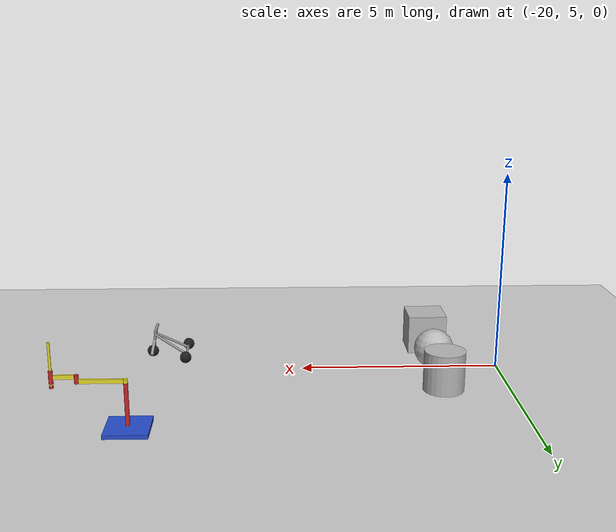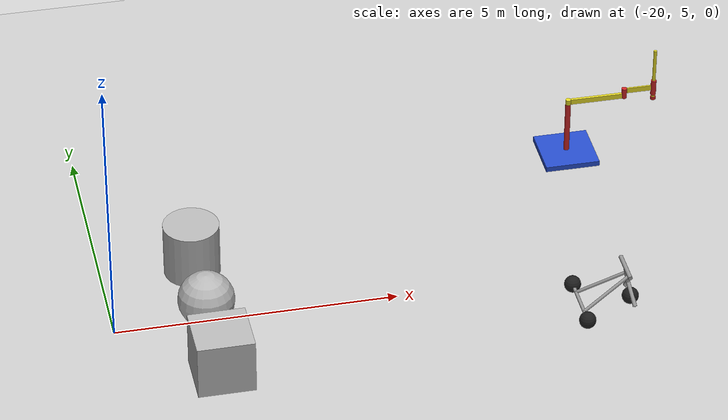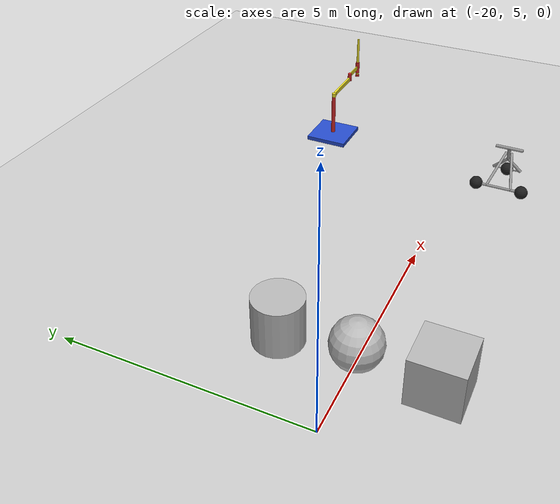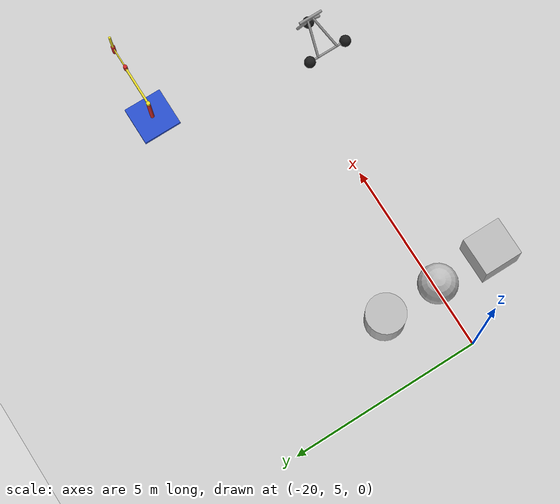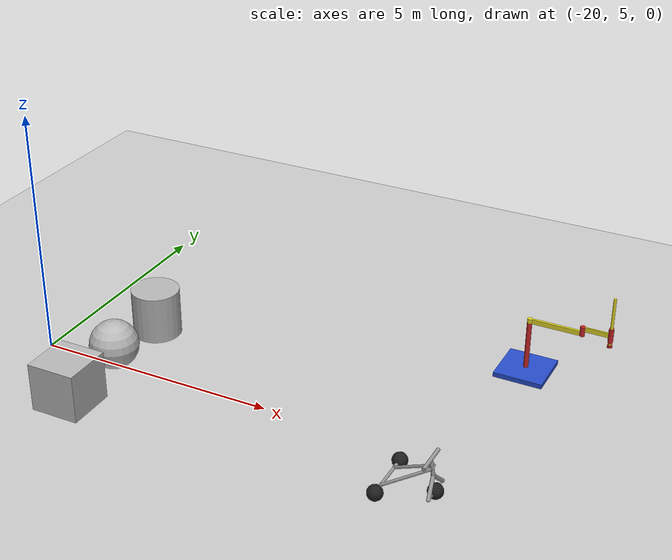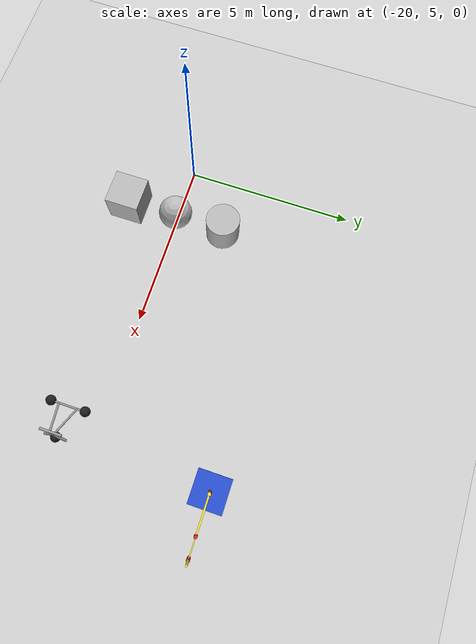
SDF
<sdf version="1.6">
 <world name="default">
  <model name="ground_plane">
   <static>1</static>
   <link name="link">
    <collision name="collision">
     <geometry><plane><normal>0 0 1</normal><size>100 100</size></plane></geometry>
     <surface>
      <contact><collide_bitmask>65535</collide_bitmask></contact>
      <friction><ode><mu>100</mu><mu2>50</mu2></ode></friction>
     </surface>
    </collision>
    <visual name="visual">
     <cast_shadows>0</cast_shadows>
     <geometry><plane><normal>0 0 1</normal><size>100 100</size></plane></geometry>
     <material>
      <script><uri>file://media/materials/scripts/gazebo.material</uri><name>Gazebo/Grey</name></script>
     </material>
    </visual>
   </link>
  </model>
  <model name="simple_arm">
   <link name="arm_base">
    <inertial>
     <pose>0 0 0.00099 0 -0 0</pose>
     <inertia><ixx>1.11</ixx><ixy>0</ixy><ixz>0</ixz><iyy>100.11</iyy><iyz>0</iyz><izz>1.01</izz></inertia>
     <mass>101</mass>
    </inertial>
    <collision name="arm_base_geom">
     <pose>0 0 0.05 0 -0 0</pose>
     <geometry><box><size>1 1 0.1</size></box></geometry>
    </collision>
    <visual name="arm_base_geom_visual">
     <pose>0 0 0.05 0 -0 0</pose>
     <geometry><box><size>1 1 0.1</size></box></geometry>
     <material>
      <script><uri>file://media/materials/scripts/gazebo.material</uri><name>Gazebo/Blue</name></script>
     </material>
    </visual>
    <collision name="arm_base_geom_arm_trunk">
     <pose>0 0 0.6 0 -0 0</pose>
     <geometry><cylinder><radius>0.05</radius><length>1</length></cylinder></geometry>
    </collision>
    <visual name="arm_base_geom_arm_trunk_visual">
     <pose>0 0 0.6 0 -0 0</pose>
     <geometry><cylinder><radius>0.05</radius><length>1</length></cylinder></geometry>
     <material>
      <script><uri>file://media/materials/scripts/gazebo.material</uri><name>Gazebo/Red</name></script>
     </material>
    </visual>
   </link>
   <link name="arm_shoulder_pan">
    <pose>0 0 1.1 0 -0 0</pose>
    <inertial>
     <pose>0.045455 0 0 0 -0 0</pose>
     <inertia><ixx>0.011</ixx><ixy>0</ixy><ixz>0</ixz><iyy>0.0225</iyy><iyz>0</iyz><izz>0.0135</izz></inertia>
     <mass>1.1</mass>
    </inertial>
    <collision name="arm_shoulder_pan_geom">
     <pose>0 0 0.05 0 -0 0</pose>
     <geometry><cylinder><radius>0.05</radius><length>0.1</length></cylinder></geometry>
    </collision>
    <visual name="arm_shoulder_pan_geom_visual">
     <pose>0 0 0.05 0 -0 0</pose>
     <geometry><cylinder><radius>0.05</radius><length>0.1</length></cylinder></geometry>
     <material>
      <script><uri>file://media/materials/scripts/gazebo.material</uri><name>Gazebo/Yellow</name></script>
     </material>
    </visual>
    <collision name="arm_shoulder_pan_geom_arm_shoulder">
     <pose>0.55 0 0.05 0 -0 0</pose>
     <geometry><box><size>1 0.05 0.1</size></box></geometry>
    </collision>
    <visual name="arm_shoulder_pan_geom_arm_shoulder_visual">
     <pose>0.55 0 0.05 0 -0 0</pose>
     <geometry><box><size>1 0.05 0.1</size></box></geometry>
     <material>
      <script><uri>file://media/materials/scripts/gazebo.material</uri><name>Gazebo/Yellow</name></script>
     </material>
    </visual>
   </link>
   <link name="arm_elbow_pan">
    <pose>1.05 0 1.1 0 -0 0</pose>
    <inertial>
     <pose>0.0875 0 0.083333 0 -0 0</pose>
     <inertia>
      <ixx>0.031</ixx>
      <ixy>0</ixy>
      <ixz>0.005</ixz>
      <iyy>0.07275</iyy>
      <iyz>0</iyz>
      <izz>0.04475</izz>
     </inertia>
     <mass>1.2</mass>
    </inertial>
    <collision name="arm_elbow_pan_geom">
     <pose>0 0 0.1 0 -0 0</pose>
     <geometry><cylinder><radius>0.05</radius><length>0.2</length></cylinder></geometry>
    </collision>
    <visual name="arm_elbow_pan_geom_visual">
     <pose>0 0 0.1 0 -0 0</pose>
     <geometry><cylinder><radius>0.05</radius><length>0.2</length></cylinder></geometry>
     <material>
      <script><uri>file://media/materials/scripts/gazebo.material</uri><name>Gazebo/Red</name></script>
     </material>
    </visual>
    <collision name="arm_elbow_pan_geom_arm_elbow">
     <pose>0.3 0 0.15 0 -0 0</pose>
     <geometry><box><size>0.5 0.03 0.1</size></box></geometry>
    </collision>
    <visual name="arm_elbow_pan_geom_arm_elbow_visual">
     <pose>0.3 0 0.15 0 -0 0</pose>
     <geometry><box><size>0.5 0.03 0.1</size></box></geometry>
     <material>
      <script><uri>file://media/materials/scripts/gazebo.material</uri><name>Gazebo/Yellow</name></script>
     </material>
    </visual>
    <collision name="arm_elbow_pan_geom_arm_wrist">
     <pose>0.55 0 0.15 0 -0 0</pose>
     <geometry><cylinder><radius>0.05</radius><length>0.3</length></cylinder></geometry>
    </collision>
    <visual name="arm_elbow_pan_geom_arm_wrist_visual">
     <pose>0.55 0 0.15 0 -0 0</pose>
     <geometry><cylinder><radius>0.05</radius><length>0.3</length></cylinder></geometry>
     <material>
      <script><uri>file://media/materials/scripts/gazebo.material</uri><name>Gazebo/Red</name></script>
     </material>
    </visual>
   </link>
   <link name="arm_wrist_lift">
    <pose>1.6 0 1.05 0 -0 0</pose>
    <inertial>
     <inertia><ixx>0.01</ixx><ixy>0</ixy><ixz>0</ixz><iyy>0.01</iyy><iyz>0</iyz><izz>0.001</izz></inertia>
     <mass>0.1</mass>
    </inertial>
    <collision name="arm_wrist_lift_geom">
     <pose>0 0 0.5 0 -0 0</pose>
     <geometry><cylinder><radius>0.03</radius><length>1</length></cylinder></geometry>
    </collision>
    <visual name="arm_wrist_lift_geom_visual">
     <pose>0 0 0.5 0 -0 0</pose>
     <geometry><cylinder><radius>0.03</radius><length>1</length></cylinder></geometry>
     <material>
      <script><uri>file://media/materials/scripts/gazebo.material</uri><name>Gazebo/Yellow</name></script>
     </material>
    </visual>
   </link>
   <link name="arm_wrist_roll">
    <pose>1.6 0 1 0 -0 0</pose>
    <inertial>
     <inertia><ixx>0.01</ixx><ixy>0</ixy><ixz>0</ixz><iyy>0.01</iyy><iyz>0</iyz><izz>0.001</izz></inertia>
     <mass>0.1</mass>
    </inertial>
    <collision name="arm_wrist_roll_geom">
     <pose>0 0 0.025 0 -0 0</pose>
     <geometry><cylinder><radius>0.05</radius><length>0.05</length></cylinder></geometry>
    </collision>
    <visual name="arm_wrist_roll_geom_visual">
     <pose>0 0 0.025 0 -0 0</pose>
     <geometry><cylinder><radius>0.05</radius><length>0.05</length></cylinder></geometry>
     <material>
      <script><uri>file://media/materials/scripts/gazebo.material</uri><name>Gazebo/Red</name></script>
     </material>
    </visual>
   </link>
   <joint name="arm_shoulder_pan_joint" type="revolute">
    <parent>arm_base</parent>
    <child>arm_shoulder_pan</child>
    <axis>
     <dynamics>
      <damping>1</damping>
      <friction>0</friction>
      <spring_reference>0</spring_reference>
      <spring_stiffness>0</spring_stiffness>
     </dynamics>
     <xyz>0 0 1</xyz>
     <use_parent_model_frame>1</use_parent_model_frame>
     <limit><lower>-1e+16</lower><upper>1e+16</upper></limit>
    </axis>
   </joint>
   <joint name="arm_elbow_pan_joint" type="revolute">
    <parent>arm_shoulder_pan</parent>
    <child>arm_elbow_pan</child>
    <axis>
     <dynamics>
      <damping>1</damping>
      <friction>0</friction>
      <spring_reference>0</spring_reference>
      <spring_stiffness>0</spring_stiffness>
     </dynamics>
     <xyz>0 0 1</xyz>
     <use_parent_model_frame>1</use_parent_model_frame>
     <limit><lower>-1e+16</lower><upper>1e+16</upper></limit>
    </axis>
   </joint>
   <joint name="arm_wrist_lift_joint" type="prismatic">
    <parent>arm_elbow_pan</parent>
    <child>arm_wrist_lift</child>
    <axis>
     <dynamics>
      <damping>1</damping>
      <friction>0</friction>
      <spring_reference>0</spring_reference>
      <spring_stiffness>0</spring_stiffness>
     </dynamics>
     <limit><lower>-0.8</lower><upper>0.1</upper></limit>
     <xyz>0 0 1</xyz>
     <use_parent_model_frame>1</use_parent_model_frame>
    </axis>
   </joint>
   <joint name="arm_wrist_roll_joint" type="revolute">
    <parent>arm_wrist_lift</parent>
    <child>arm_wrist_roll</child>
    <axis>
     <dynamics>
      <damping>1</damping>
      <friction>0</friction>
      <spring_reference>0</spring_reference>
      <spring_stiffness>0</spring_stiffness>
     </dynamics>
     <limit><lower>-2.99999</lower><upper>2.99999</upper></limit>
     <xyz>0 0 1</xyz>
     <use_parent_model_frame>1</use_parent_model_frame>
    </axis>
   </joint>
   <pose>-11.0493 8.53607 0 0 0 -0.002496</pose>
  </model>
  <model name="trisphere_cycle">
   <link name="frame">
    <pose>-0.408559 0 0.385023 0 -0.522021 0</pose>
    <inertial>
     <mass>10</mass>
     <inertia><ixx>0.228</ixx><iyy>0.743521</iyy><izz>0.965521</izz><ixy>0</ixy><ixz>0</ixz><iyz>0</iyz></inertia>
    </inertial>
    <collision name="axle_collision">
     <pose>-0.471335 0 0 1.5708 -0 0</pose>
     <geometry><cylinder><length>1.03923</length><radius>0.03</radius></cylinder></geometry>
    </collision>
    <visual name="axle_visual">
     <pose>-0.471335 0 0 1.5708 -0 0</pose>
     <geometry><cylinder><length>1.03923</length><radius>0.03</radius></cylinder></geometry>
     <material>
      <script><uri>file://media/materials/scripts/gazebo.material</uri><name>Gazebo/Grey</name></script>
     </material>
    </visual>
    <collision name="frame_left_collision">
     <pose>0 0.171552 0 2.986 1.57079 2.76675</pose>
     <geometry><cylinder><length>1.00317</length><radius>0.03</radius></cylinder></geometry>
    </collision>
    <visual name="frame_left_visual">
     <pose>0 0.171552 0 2.986 1.57079 2.76675</pose>
     <geometry><cylinder><length>1.00317</length><radius>0.03</radius></cylinder></geometry>
     <material>
      <script><uri>file://media/materials/scripts/gazebo.material</uri><name>Gazebo/Grey</name></script>
     </material>
    </visual>
    <collision name="frame_right_collision">
     <pose>0 -0.171552 0 -2.986 1.57079 -2.76675</pose>
     <geometry><cylinder><length>1.00317</length><radius>0.03</radius></cylinder></geometry>
    </collision>
    <visual name="frame_right_visual">
     <pose>0 -0.171552 0 -2.986 1.57079 -2.76675</pose>
     <geometry><cylinder><length>1.00317</length><radius>0.03</radius></cylinder></geometry>
     <material>
      <script><uri>file://media/materials/scripts/gazebo.material</uri><name>Gazebo/Grey</name></script>
     </material>
    </visual>
   </link>
   <link name="fork">
    <pose>0.041441 0 0.385023 0 -0.174533 0</pose>
    <inertial>
     <mass>3</mass>
     <inertia>
      <ixx>0.158203</ixx>
      <iyy>0.0583594</iyy>
      <izz>0.102656</izz>
      <ixy>0</ixy>
      <ixz>0</ixz>
      <iyz>0</iyz>
     </inertia>
    </inertial>
    <collision name="handlebars_collision">
     <pose>0 0 0.397748 1.5708 -0 0</pose>
     <geometry><cylinder><length>0.636396</length><radius>0.0375</radius></cylinder></geometry>
    </collision>
    <visual name="handlebars_visual">
     <pose>0 0 0.397748 1.5708 -0 0</pose>
     <geometry><cylinder><length>0.636396</length><radius>0.0375</radius></cylinder></geometry>
     <material>
      <script><uri>file://media/materials/scripts/gazebo.material</uri><name>Gazebo/Grey</name></script>
     </material>
    </visual>
    <collision name="headtube_collision">
     <pose>0 0 0.238649 0 -0 0</pose>
     <geometry><cylinder><length>0.318198</length><radius>0.0375</radius></cylinder></geometry>
    </collision>
    <visual name="headtube_visual">
     <pose>0 0 0.238649 0 -0 0</pose>
     <geometry><cylinder><length>0.318198</length><radius>0.0375</radius></cylinder></geometry>
     <material>
      <script><uri>file://media/materials/scripts/gazebo.material</uri><name>Gazebo/Grey</name></script>
     </material>
    </visual>
    <collision name="spindle_collision">
     <pose>0 0 -0.238649 1.5708 -0 0</pose>
     <geometry><cylinder><length>0.636396</length><radius>0.015</radius></cylinder></geometry>
    </collision>
    <visual name="spindle_visual">
     <pose>0 0 -0.238649 1.5708 -0 0</pose>
     <geometry><cylinder><length>0.636396</length><radius>0.015</radius></cylinder></geometry>
     <material>
      <script><uri>file://media/materials/scripts/gazebo.material</uri><name>Gazebo/Grey</name></script>
     </material>
    </visual>
    <collision name="fork_left_collision">
     <pose>0 0.159099 -0.07955 0.785398 -0 0</pose>
     <geometry><cylinder><length>0.45</length><radius>0.0375</radius></cylinder></geometry>
    </collision>
    <visual name="fork_left_visual">
     <pose>0 0.159099 -0.07955 0.785398 -0 0</pose>
     <geometry><cylinder><length>0.45</length><radius>0.0375</radius></cylinder></geometry>
     <material>
      <script><uri>file://media/materials/scripts/gazebo.material</uri><name>Gazebo/Grey</name></script>
     </material>
    </visual>
    <collision name="fork_right_collision">
     <pose>0 -0.159099 -0.07955 -0.785398 0 0</pose>
     <geometry><cylinder><length>0.45</length><radius>0.0375</radius></cylinder></geometry>
    </collision>
    <visual name="fork_right_visual">
     <pose>0 -0.159099 -0.07955 -0.785398 0 0</pose>
     <geometry><cylinder><length>0.45</length><radius>0.0375</radius></cylinder></geometry>
     <material>
      <script><uri>file://media/materials/scripts/gazebo.material</uri><name>Gazebo/Grey</name></script>
     </material>
    </visual>
   </link>
   <link name="wheel_front">
    <pose>0.082882 0 0.15 0 -0 0</pose>
    <inertial>
     <mass>0.5</mass>
     <inertia><ixx>0.0045</ixx><iyy>0.0045</iyy><izz>0.0045</izz><ixy>0</ixy><ixz>0</ixz><iyz>0</iyz></inertia>
    </inertial>
    <collision name="collision">
     <geometry><sphere><radius>0.15</radius></sphere></geometry>
     <surface><contact><ode><kp>1e+08</kp><kd>1</kd><min_depth>0.0005</min_depth></ode></contact></surface>
    </collision>
    <visual name="visual">
     <geometry><sphere><radius>0.15</radius></sphere></geometry>
     <material>
      <script><uri>file://media/materials/scripts/gazebo.material</uri><name>Gazebo/Black</name></script>
     </material>
    </visual>
   </link>
   <joint name="wheel_front_steer" type="revolute">
    <parent>frame</parent>
    <child>fork</child>
    <axis>
     <xyz>0 0 1</xyz>
     <limit><lower>-0.959931</lower><upper>0.959931</upper></limit>
     <use_parent_model_frame>0</use_parent_model_frame>
     <dynamics><spring_reference>0</spring_reference><spring_stiffness>0</spring_stiffness></dynamics>
    </axis>
   </joint>
   <joint name="wheel_front_spin" type="revolute">
    <parent>fork</parent>
    <child>wheel_front</child>
    <axis>
     <xyz>0 1 0</xyz>
     <use_parent_model_frame>0</use_parent_model_frame>
     <limit><lower>-1e+16</lower><upper>1e+16</upper></limit>
     <dynamics><spring_reference>0</spring_reference><spring_stiffness>0</spring_stiffness></dynamics>
    </axis>
   </joint>
   <link name="wheel_rear_left">
    <pose>-0.817118 0.519615 0.15 0 -0 0</pose>
    <inertial>
     <mass>0.5</mass>
     <inertia><ixx>0.0045</ixx><iyy>0.0045</iyy><izz>0.0045</izz><ixy>0</ixy><ixz>0</ixz><iyz>0</iyz></inertia>
    </inertial>
    <collision name="collision">
     <geometry><sphere><radius>0.15</radius></sphere></geometry>
     <surface><contact><ode><kp>1e+08</kp><kd>1</kd><min_depth>0.0005</min_depth></ode></contact></surface>
    </collision>
    <visual name="visual">
     <geometry><sphere><radius>0.15</radius></sphere></geometry>
     <material>
      <script><uri>file://media/materials/scripts/gazebo.material</uri><name>Gazebo/Black</name></script>
     </material>
    </visual>
   </link>
   <joint name="wheel_rear_left_spin" type="revolute">
    <parent>frame</parent>
    <child>wheel_rear_left</child>
    <axis>
     <xyz>0 1 0</xyz>
     <use_parent_model_frame>0</use_parent_model_frame>
     <limit><lower>-1e+16</lower><upper>1e+16</upper></limit>
     <dynamics><spring_reference>0</spring_reference><spring_stiffness>0</spring_stiffness></dynamics>
    </axis>
   </joint>
   <link name="wheel_rear_right">
    <pose>-0.817118 -0.519615 0.15 0 -0 0</pose>
    <inertial>
     <mass>0.5</mass>
     <inertia><ixx>0.0045</ixx><iyy>0.0045</iyy><izz>0.0045</izz><ixy>0</ixy><ixz>0</ixz><iyz>0</iyz></inertia>
    </inertial>
    <collision name="collision">
     <geometry><sphere><radius>0.15</radius></sphere></geometry>
     <surface><contact><ode><kp>1e+08</kp><kd>1</kd><min_depth>0.0005</min_depth></ode></contact></surface>
    </collision>
    <visual name="visual">
     <geometry><sphere><radius>0.15</radius></sphere></geometry>
     <material>
      <script><uri>file://media/materials/scripts/gazebo.material</uri><name>Gazebo/Black</name></script>
     </material>
    </visual>
   </link>
   <joint name="wheel_rear_right_spin" type="revolute">
    <parent>frame</parent>
    <child>wheel_rear_right</child>
    <axis>
     <xyz>0 1 0</xyz>
     <use_parent_model_frame>0</use_parent_model_frame>
     <limit><lower>-1e+16</lower><upper>1e+16</upper></limit>
     <dynamics><spring_reference>0</spring_reference><spring_stiffness>0</spring_stiffness></dynamics>
    </axis>
   </joint>
   <pose>-11.1568 4.00405 -0.000501 -0 1e-06 -0.000793</pose>
  </model>
  <model name="textured_shapes">
   <pose>-18.3789 4.97767 0.5 0 -0 0</pose>
   <link name="box">
    <pose>0 -1.5 0 0 -0 0</pose>
    <collision name="collision"><geometry><box><size>1 1 1</size></box></geometry></collision>
    <visual name="visual">
     <geometry><box><size>1 1 1</size></box></geometry>
     <material>
      <script>
       <uri>model://textured_shapes/materials/scripts</uri>
       <uri>model://textured_shapes/materials/textures</uri>
       <name>TexturedShape/Squares</name>
      </script>
     </material>
    </visual>
    <inertial>
     <inertia><ixx>1</ixx><ixy>0</ixy><ixz>0</ixz><iyy>1</iyy><iyz>0</iyz><izz>1</izz></inertia>
     <mass>1</mass>
    </inertial>
   </link>
   <link name="sphere">
    <collision name="collision"><geometry><sphere><radius>0.5</radius></sphere></geometry></collision>
    <visual name="visual">
     <geometry><sphere><radius>0.5</radius></sphere></geometry>
     <material>
      <script>
       <uri>model://textured_shapes/materials/scripts</uri>
       <uri>model://textured_shapes/materials/textures</uri>
       <name>TexturedShape/Squares</name>
      </script>
     </material>
    </visual>
    <inertial>
     <inertia><ixx>1</ixx><ixy>0</ixy><ixz>0</ixz><iyy>1</iyy><iyz>0</iyz><izz>1</izz></inertia>
     <mass>1</mass>
    </inertial>
   </link>
   <link name="cylinder">
    <pose>0 1.5 0 0 -0 0</pose>
    <collision name="collision">
     <geometry><cylinder><radius>0.5</radius><length>1</length></cylinder></geometry>
    </collision>
    <visual name="visual">
     <geometry><cylinder><radius>0.5</radius><length>1</length></cylinder></geometry>
     <material>
      <script>
       <uri>model://textured_shapes/materials/scripts</uri>
       <uri>model://textured_shapes/materials/textures</uri>
       <name>TexturedShape/Squares</name>
      </script>
     </material>
    </visual>
    <inertial>
     <inertia><ixx>1</ixx><ixy>0</ixy><ixz>0</ixz><iyy>1</iyy><iyz>0</iyz><izz>1</izz></inertia>
     <mass>1</mass>
    </inertial>
   </link>
  </model>
 </world>
</sdf>
